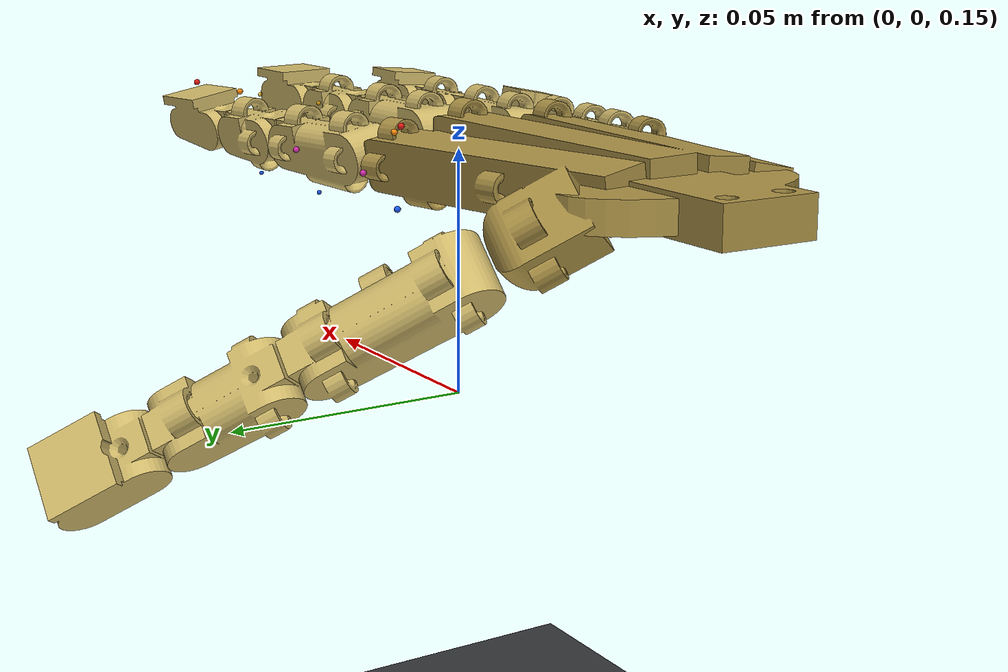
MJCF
<?xml version='1.0' encoding='utf-8'?>
<mujoco model="100_fingers_index_cable_debug">
  <compiler angle="radian" autolimits="true" meshdir="assets/100_fingers_human" />
  <size nuser_site="1" />
  <option timestep="0.0005" gravity="0 0 0" integrator="implicitfast" />
  <extension>
    <plugin plugin="mujoco.cable.unilateral">
      <instance name="index_extensor_cable">
        <config key="route_mode" value="surface" />
        <config key="route_tendon" value="index_extensor_seed" />
        <config key="wrap_geoms" value="index_mcp_wrap index_pip_wrap index_dip_wrap" />
        <config key="home_length" value="auto_initial" />
        <config key="stiffness" value="500.0" />
        <config key="damping" value="1.2" />
        <config key="slack" value="5e-05" />
        <config key="pretension_offset" value="0.0001" />
        <config key="max_tension" value="5.0" />
        <config key="ctrl_mode" value="target_contraction" />
        <config key="control_timeconstant" value="0.04" />
        <config key="max_contraction_rate" value="0.04" />
        <config key="taut_transition" value="8e-05" />
        <config key="taut_hysteresis" value="2e-05" />
        <config key="route_hysteresis" value="1e-05" />
        <config key="visual_width" value="1.6" />
        <config key="visual_smoothing_timeconstant" value="0.02" />
      </instance>
      <instance name="index_abductor_cable">
        <config key="route_mode" value="surface" />
        <config key="route_tendon" value="index_abductor_seed" />
        <config key="wrap_geoms" value="index_mcp_lateral_wrap" />
        <config key="home_length" value="auto_initial" />
        <config key="stiffness" value="350.0" />
        <config key="damping" value="1.2" />
        <config key="slack" value="5e-05" />
        <config key="pretension_offset" value="0.0001" />
        <config key="max_tension" value="5.0" />
        <config key="ctrl_mode" value="target_contraction" />
        <config key="control_timeconstant" value="0.04" />
        <config key="max_contraction_rate" value="0.04" />
        <config key="taut_transition" value="8e-05" />
        <config key="taut_hysteresis" value="2e-05" />
        <config key="route_hysteresis" value="1e-05" />
        <config key="visual_width" value="1.6" />
        <config key="visual_smoothing_timeconstant" value="0.02" />
      </instance>
      <instance name="index_adductor_cable">
        <config key="route_mode" value="surface" />
        <config key="route_tendon" value="index_adductor_seed" />
        <config key="wrap_geoms" value="index_mcp_lateral_wrap" />
        <config key="home_length" value="auto_initial" />
        <config key="stiffness" value="350.0" />
        <config key="damping" value="1.2" />
        <config key="slack" value="5e-05" />
        <config key="pretension_offset" value="0.0001" />
        <config key="max_tension" value="5.0" />
        <config key="ctrl_mode" value="target_contraction" />
        <config key="control_timeconstant" value="0.04" />
        <config key="max_contraction_rate" value="0.04" />
        <config key="taut_transition" value="8e-05" />
        <config key="taut_hysteresis" value="2e-05" />
        <config key="route_hysteresis" value="1e-05" />
        <config key="visual_width" value="1.6" />
        <config key="visual_smoothing_timeconstant" value="0.02" />
      </instance>
      <instance name="index_flexor_intermediate_cable">
        <config key="route_mode" value="surface" />
        <config key="route_tendon" value="index_flexor_intermediate_seed" />
        <config key="wrap_geoms" value="index_mcp_wrap index_pip_wrap" />
        <config key="home_length" value="auto_initial" />
        <config key="stiffness" value="700.0" />
        <config key="damping" value="1.2" />
        <config key="slack" value="5e-05" />
        <config key="pretension_offset" value="0.0001" />
        <config key="max_tension" value="5.0" />
        <config key="ctrl_mode" value="target_contraction" />
        <config key="control_timeconstant" value="0.04" />
        <config key="max_contraction_rate" value="0.04" />
        <config key="taut_transition" value="8e-05" />
        <config key="taut_hysteresis" value="2e-05" />
        <config key="route_hysteresis" value="1e-05" />
        <config key="visual_width" value="1.6" />
        <config key="visual_smoothing_timeconstant" value="0.02" />
      </instance>
      <instance name="index_flexor_distal_cable">
        <config key="route_mode" value="surface" />
        <config key="route_tendon" value="index_flexor_distal_seed" />
        <config key="wrap_geoms" value="index_mcp_wrap index_pip_wrap index_dip_wrap" />
        <config key="home_length" value="auto_initial" />
        <config key="stiffness" value="700.0" />
        <config key="damping" value="1.2" />
        <config key="slack" value="5e-05" />
        <config key="pretension_offset" value="0.0001" />
        <config key="max_tension" value="5.0" />
        <config key="ctrl_mode" value="target_contraction" />
        <config key="control_timeconstant" value="0.04" />
        <config key="max_contraction_rate" value="0.04" />
        <config key="taut_transition" value="8e-05" />
        <config key="taut_hysteresis" value="2e-05" />
        <config key="route_hysteresis" value="1e-05" />
        <config key="visual_width" value="1.6" />
        <config key="visual_smoothing_timeconstant" value="0.02" />
      </instance>
    </plugin>
  </extension>
  <asset>
    <texture name="grid" type="2d" builtin="checker" rgb1="0.17 0.18 0.19" rgb2="0.24 0.25 0.26" width="512" height="512" />
    <material name="floor_material" texture="grid" texrepeat="8 8" reflectance="0.08" />
    <material name="bone_material" rgba="0.82 0.73 0.42 1" specular="0.25" shininess="0.3" />
    <material name="palm_material" rgba="0.68 0.58 0.28 1" specular="0.20" shininess="0.25" />
    <mesh name="human_palm_mesh" file="human_palm.stl" scale="0.001 0.001 0.001" />
    <mesh name="index_proximal_mesh" file="human_index_proximal.stl" scale="0.001 0.001 0.001" />
    <mesh name="index_intermediate_mesh" file="human_index_intermediate.stl" scale="0.001 0.001 0.001" />
    <mesh name="index_distal_mesh" file="human_index_distal.stl" scale="0.001 0.001 0.001" />
    <mesh name="middle_proximal_mesh" file="human_middle_proximal.stl" scale="0.001 0.001 0.001" />
    <mesh name="middle_intermediate_mesh" file="human_middle_intermediate.stl" scale="0.001 0.001 0.001" />
    <mesh name="middle_distal_mesh" file="human_middle_distal.stl" scale="0.001 0.001 0.001" />
    <mesh name="ring_proximal_mesh" file="human_ring_proximal.stl" scale="0.001 0.001 0.001" />
    <mesh name="ring_intermediate_mesh" file="human_ring_intermediate.stl" scale="0.001 0.001 0.001" />
    <mesh name="ring_distal_mesh" file="human_ring_distal.stl" scale="0.001 0.001 0.001" />
    <mesh name="little_proximal_mesh" file="human_little_proximal.stl" scale="0.001 0.001 0.001" />
    <mesh name="little_intermediate_mesh" file="human_little_intermediate.stl" scale="0.001 0.001 0.001" />
    <mesh name="little_distal_mesh" file="human_little_distal.stl" scale="0.001 0.001 0.001" />
    <mesh name="thumb_proximal_mesh" file="human_thumb_proximal.stl" scale="0.001 0.001 0.001" />
    <mesh name="thumb_intermediate_mesh" file="human_thumb_intermediate.stl" scale="0.001 0.001 0.001" />
    <mesh name="thumb_distal_mesh" file="human_thumb_distal.stl" scale="0.001 0.001 0.001" />
  </asset>
  <visual>
    <headlight diffuse="0.75 0.75 0.75" ambient="0.25 0.25 0.25" />
    <global azimuth="-90" elevation="-52" />
  </visual>
  <default>
    <geom friction="0.9 0.01 0.001" solref="0.008 1" solimp="0.92 0.99 0.002" />
    <joint armature="0.00002" frictionloss="0.001" solreflimit="0.003 1" solimplimit="0.95 0.999 0.001" />
  </default>
  <worldbody>
    <light name="key" pos="0 -0.25 0.55" dir="0 0.25 -1" />
    <geom name="floor" type="plane" pos="0 0 0" size="0.40 0.40 0.01" material="floor_material" />
    <camera name="overview" pos="0.02 -0.34 0.34" xyaxes="1 0 0 0 0.447213595 0.894427191" />
    <camera name="dorsal" pos="0.02 0 0.48" xyaxes="1 0 0 0 1 0" />
    <body name="hand_frame" pos="-0.055 0 0.205" euler="1.57079632679 0 0">
      <geom name="human_palm_visual" type="mesh" mesh="human_palm_mesh" material="palm_material" density="0" contype="0" conaffinity="0" />
      <body name="index_mount" pos="0.0691641006 -0.00797923207 -0.0137002456" quat="0.998700812 0.000570927685 0.049643146 0.0114856932">
        <site name="index_extensor_start" pos="-0.012 -0.0079925 0" user="1" size="0.00065" rgba="0.10 0.35 0.95 1" />
        <site name="index_abductor_start" pos="-0.012 0 0.0079925" user="1" size="0.00065" rgba="0.00 0.68 0.72 1" />
        <site name="index_adductor_start" pos="-0.012 0 -0.0079925" user="1" size="0.00065" rgba="0.82 0.18 0.66 1" />
        <site name="index_flexor_intermediate_start" pos="-0.012 0.0072975 -0.0008" user="1" size="0.00065" rgba="1.00 0.55 0.05 1" />
        <site name="index_flexor_distal_start" pos="-0.012 0.00834 0.0008" user="1" size="0.00065" rgba="0.92 0.10 0.08 1" />
        <body name="index_proximal" pos="0 0 0">
          <inertial pos="0.0165290416 0.000941112353 0.00240157078" mass="0.01" diaginertia="1.2e-06 1.2e-06 1.2e-06" />
          <joint name="index_mcp_abduction" type="hinge" axis="0 1 0" range="-0.45 0.45" damping="0.02" />
          <joint name="index_mcp_flexion" type="hinge" axis="0 0 1" range="-0.15 1.30" damping="0.02" />
          <geom name="index_proximal_visual" type="mesh" mesh="index_proximal_mesh" material="bone_material" density="0" contype="0" conaffinity="0" />
          <geom name="index_mcp_wrap" type="cylinder" size="0.00695 0.0075" density="0" contype="0" conaffinity="0" rgba="0 0 0 0" />
          <geom name="index_mcp_lateral_wrap" type="cylinder" size="0.00695 0.0075" quat="0.707106781 -0.707106781 0 0" density="0" contype="0" conaffinity="0" rgba="0 0 0 0" />
          <site name="index_mcp_flexor_intermediate_hint" pos="0 0.0072975 -0.0008" user="2" size="0.00015" rgba="0 0 0 0" />
          <site name="index_mcp_flexor_distal_hint" pos="0 0.00834 0.0008" user="2" size="0.00015" rgba="0 0 0 0" />
          <site name="index_mcp_extensor_hint" pos="0 -0.0079925 0" user="2" size="0.00015" rgba="0 0 0 0" />
          <site name="index_mcp_abductor_hint" pos="0 0 0.0079925" user="2" size="0.00015" rgba="0 0 0 0" />
          <site name="index_mcp_adductor_hint" pos="0 0 -0.0079925" user="2" size="0.00015" rgba="0 0 0 0" />
          <site name="index_abductor_end" pos="0.0177795557 0 0.004865" user="1" size="0.00065" rgba="0.00 0.68 0.72 1" />
          <site name="index_adductor_end" pos="0.0177795557 0 -0.004865" user="1" size="0.00065" rgba="0.82 0.18 0.66 1" />
          <site name="index_proximal_flexor_guide" pos="0.0168097618 0.0094809532 0" user="3" size="0.00045" rgba="1 0.72 0.08 0.75" />
          <site name="index_proximal_extensor_guide" pos="0.0168097618 -0.00928579543 0" user="3" size="0.00045" rgba="0.10 0.35 0.95 1" />
          <body name="index_intermediate" pos="0.0323407908 1.78342423e-05 0.00119848233">
            <inertial pos="0.00877692332 -0.000401131915 -0.000145114203" mass="0.006" diaginertia="7e-07 7e-07 7e-07" />
            <joint name="index_pip_flexion" type="hinge" axis="0 0 1" range="0 1.75" damping="0.018" />
            <geom name="index_intermediate_visual" type="mesh" mesh="index_intermediate_mesh" material="bone_material" density="0" contype="0" conaffinity="0" />
            <geom name="index_pip_wrap" type="cylinder" size="0.00445 0.006" density="0" contype="0" conaffinity="0" rgba="0 0 0 0" />
            <site name="index_pip_flexor_intermediate_hint" pos="0 0.0046725 -0.0008" user="2" size="0.00015" rgba="0 0 0 0" />
            <site name="index_pip_flexor_distal_hint" pos="0 0.00534 0.0008" user="2" size="0.00015" rgba="0 0 0 0" />
            <site name="index_pip_extensor_hint" pos="0 -0.0051175 0" user="2" size="0.00015" rgba="0 0 0 0" />
            <site name="index_intermediate_flexor_guide" pos="0.0103734241 0.00816390052 0" user="3" size="0.00045" rgba="1 0.72 0.08 0.75" />
            <site name="index_intermediate_extensor_guide" pos="0.0103734241 -0.00925003271 0" user="3" size="0.00045" rgba="0.10 0.35 0.95 1" />
            <site name="index_flexor_intermediate_end" pos="0.0179488925 0.00798696037 -0.0008" user="1" size="0.00065" rgba="1.00 0.55 0.05 1" />
            <body name="index_distal" pos="0.0199612157 -1.78342423e-05 -0.00119848233">
              <inertial pos="0.00779740518 0.000138634689 -0.000264567579" mass="0.004" diaginertia="5e-07 5e-07 5e-07" />
              <joint name="index_dip_flexion" type="hinge" axis="0 0 1" range="0 1.45" damping="0.018" />
              <geom name="index_distal_visual" type="mesh" mesh="index_distal_mesh" material="bone_material" density="0" contype="0" conaffinity="0" />
              <geom name="index_dip_wrap" type="cylinder" size="0.003825 0.00525" density="0" contype="0" conaffinity="0" rgba="0 0 0 0" />
              <site name="index_dip_flexor_distal_hint" pos="0 0.00459 0.0008" user="2" size="0.00015" rgba="0 0 0 0" />
              <site name="index_dip_extensor_hint" pos="0 -0.00439875 0" user="2" size="0.00015" rgba="0 0 0 0" />
              <site name="index_flexor_distal_end" pos="0.0187697291 0.00773395368 0.0008" user="1" size="0.00065" rgba="0.92 0.10 0.08 1" />
              <site name="index_extensor_end" pos="0.0187697291 -0.00527720884 0" user="1" size="0.00065" rgba="0.10 0.35 0.95 1" />
              <site name="index_tip" pos="0.0187697291 0 0" size="0.0012" rgba="0.95 0.75 0.12 1" />
            </body>
          </body>
        </body>
      </body>
      <body name="middle_mount" pos="0.0743175316 -0.00584696209 0.0045850364" quat="0.99967989 -0.000259258806 -0.0225335141 0.011501793">
        <body name="middle_proximal" pos="0 0 0">
          <inertial pos="0.0174886819 0.00112390797 0.00272663141" mass="0.01" diaginertia="1.2e-06 1.2e-06 1.2e-06" />
          <joint name="middle_mcp_abduction" type="hinge" axis="0 1 0" range="-0.45 0.45" damping="0.02" />
          <joint name="middle_mcp_flexion" type="hinge" axis="0 0 1" range="-0.15 1.30" damping="0.02" />
          <geom name="middle_proximal_visual" type="mesh" mesh="middle_proximal_mesh" material="bone_material" density="0" contype="0" conaffinity="0" />
          <body name="middle_intermediate" pos="0.034107321 -3.15985695e-05 0.00153409842">
            <inertial pos="0.00943089969 -5.92547337e-06 -0.000619799024" mass="0.006" diaginertia="7e-07 7e-07 7e-07" />
            <joint name="middle_pip_flexion" type="hinge" axis="0 0 1" range="0 1.75" damping="0.018" />
            <geom name="middle_intermediate_visual" type="mesh" mesh="middle_intermediate_mesh" material="bone_material" density="0" contype="0" conaffinity="0" />
            <body name="middle_distal" pos="0.0213307528 3.15985695e-05 -0.00153409842">
              <inertial pos="0.00787731135 0.000742184633 -0.000528686378" mass="0.004" diaginertia="5e-07 5e-07 5e-07" />
              <joint name="middle_dip_flexion" type="hinge" axis="0 0 1" range="0 1.45" damping="0.018" />
              <geom name="middle_distal_visual" type="mesh" mesh="middle_distal_mesh" material="bone_material" density="0" contype="0" conaffinity="0" />
              <site name="middle_tip" pos="0.020613162 0 0" size="0.0012" rgba="0.95 0.75 0.12 1" />
            </body>
          </body>
        </body>
      </body>
      <body name="ring_mount" pos="0.0712914505 -0.00669905484 0.0311684575" quat="0.999892993 -0.000102429229 -0.00871981461 0.011745464">
        <body name="ring_proximal" pos="0 0 0">
          <inertial pos="0.0161460168 0.000966987612 -0.00225843536" mass="0.01" diaginertia="1.2e-06 1.2e-06 1.2e-06" />
          <joint name="ring_mcp_abduction" type="hinge" axis="0 1 0" range="-0.45 0.45" damping="0.02" />
          <joint name="ring_mcp_flexion" type="hinge" axis="0 0 1" range="-0.15 1.30" damping="0.02" />
          <geom name="ring_proximal_visual" type="mesh" mesh="ring_proximal_mesh" material="bone_material" density="0" contype="0" conaffinity="0" />
          <body name="ring_intermediate" pos="0.0317267548 -4.7823839e-05 -0.00121365981">
            <inertial pos="0.00904079374 -6.66719937e-05 0.000387222347" mass="0.006" diaginertia="7e-07 7e-07 7e-07" />
            <joint name="ring_pip_flexion" type="hinge" axis="0 0 1" range="0 1.75" damping="0.018" />
            <geom name="ring_intermediate_visual" type="mesh" mesh="ring_intermediate_mesh" material="bone_material" density="0" contype="0" conaffinity="0" />
            <body name="ring_distal" pos="0.0205560087 4.7823839e-05 0.00121365981">
              <inertial pos="0.00792798071 0.000563846871 0.000371284873" mass="0.004" diaginertia="5e-07 5e-07 5e-07" />
              <joint name="ring_dip_flexion" type="hinge" axis="0 0 1" range="0 1.45" damping="0.018" />
              <geom name="ring_distal_visual" type="mesh" mesh="ring_distal_mesh" material="bone_material" density="0" contype="0" conaffinity="0" />
              <site name="ring_tip" pos="0.0200536733 0 0" size="0.0012" rgba="0.95 0.75 0.12 1" />
            </body>
          </body>
        </body>
      </body>
      <body name="little_mount" pos="0.0594162178 -0.0090879457 0.0413373909" quat="0.991384289 -0.000456937502 -0.13093897 0.00345963208">
        <body name="little_proximal" pos="0 0 0">
          <inertial pos="0.0146596637 0.000580461882 0.0018994543" mass="0.01" diaginertia="1.2e-06 1.2e-06 1.2e-06" />
          <joint name="little_mcp_abduction" type="hinge" axis="0 1 0" range="-0.45 0.45" damping="0.02" />
          <joint name="little_mcp_flexion" type="hinge" axis="0 0 1" range="-0.15 1.30" damping="0.02" />
          <geom name="little_proximal_visual" type="mesh" mesh="little_proximal_mesh" material="bone_material" density="0" contype="0" conaffinity="0" />
          <body name="little_intermediate" pos="0.0285753028 -0.000194759338 0.00123445991">
            <inertial pos="0.00801605874 -0.000227590866 -0.000928502185" mass="0.006" diaginertia="7e-07 7e-07 7e-07" />
            <joint name="little_pip_flexion" type="hinge" axis="0 0 1" range="0 1.75" damping="0.018" />
            <geom name="little_intermediate_visual" type="mesh" mesh="little_intermediate_mesh" material="bone_material" density="0" contype="0" conaffinity="0" />
            <body name="little_distal" pos="0.018541709 0.000194759338 -0.00123445991">
              <inertial pos="0.00638638377 0.000439387552 -0.000589624222" mass="0.004" diaginertia="5e-07 5e-07 5e-07" />
              <joint name="little_dip_flexion" type="hinge" axis="0 0 1" range="0 1.45" damping="0.018" />
              <geom name="little_distal_visual" type="mesh" mesh="little_distal_mesh" material="bone_material" density="0" contype="0" conaffinity="0" />
              <site name="little_tip" pos="0.0160171928 0 0" size="0.0012" rgba="0.95 0.75 0.12 1" />
            </body>
          </body>
        </body>
      </body>
      <body name="thumb_mount" pos="0.00730069697 -0.0191560717 -0.0203346233" quat="0.863417788 -0.105460324 0.449921134 -0.202382846">
        <body name="thumb_proximal" pos="0 0 0">
          <inertial pos="0.0201983694 0.00275823402 0.00142041813" mass="0.01" diaginertia="1.2e-06 1.2e-06 1.2e-06" />
          <joint name="thumb_mcp_abduction" type="hinge" axis="0 1 0" range="-0.45 0.45" damping="0.02" />
          <joint name="thumb_mcp_flexion" type="hinge" axis="0 0 1" range="-0.15 1.30" damping="0.02" />
          <geom name="thumb_proximal_visual" type="mesh" mesh="thumb_proximal_mesh" material="bone_material" density="0" contype="0" conaffinity="0" />
          <body name="thumb_intermediate" pos="0.0386129609 0.00146640829 0.000183108589">
            <inertial pos="0.0132394981 -0.00146243131 0.00105054212" mass="0.006" diaginertia="7e-07 7e-07 7e-07" />
            <joint name="thumb_pip_flexion" type="hinge" axis="0 0 1" range="0 1.75" damping="0.018" />
            <geom name="thumb_intermediate_visual" type="mesh" mesh="thumb_intermediate_mesh" material="bone_material" density="0" contype="0" conaffinity="0" />
            <body name="thumb_distal" pos="0.0277043294 -0.00146640829 -0.000183108589">
              <inertial pos="0.00962865987 -0.000791135378 0.000409138211" mass="0.004" diaginertia="5e-07 5e-07 5e-07" />
              <joint name="thumb_dip_flexion" type="hinge" axis="0 0 1" range="0 1.45" damping="0.018" />
              <geom name="thumb_distal_visual" type="mesh" mesh="thumb_distal_mesh" material="bone_material" density="0" contype="0" conaffinity="0" />
              <site name="thumb_tip" pos="0.0223360225 0 0" size="0.0012" rgba="0.95 0.75 0.12 1" />
            </body>
          </body>
        </body>
      </body>
    </body>
    <camera name="index_route_debug" pos="0.050 -0.220 0.197" xyaxes="1 0 0 0 0 1" />
  </worldbody>
  <tendon>
    <spatial name="index_extensor_seed" width="0.000000001" rgba="0.10 0.35 0.95 1" limited="false">
      <site site="index_extensor_start" />
      <site site="index_mcp_extensor_hint" />
      <site site="index_proximal_extensor_guide" />
      <site site="index_pip_extensor_hint" />
      <site site="index_intermediate_extensor_guide" />
      <site site="index_dip_extensor_hint" />
      <site site="index_extensor_end" />
    </spatial>
    <spatial name="index_abductor_seed" width="0.000000001" rgba="0.00 0.68 0.72 1" limited="false">
      <site site="index_abductor_start" />
      <site site="index_mcp_abductor_hint" />
      <site site="index_abductor_end" />
    </spatial>
    <spatial name="index_adductor_seed" width="0.000000001" rgba="0.82 0.18 0.66 1" limited="false">
      <site site="index_adductor_start" />
      <site site="index_mcp_adductor_hint" />
      <site site="index_adductor_end" />
    </spatial>
    <spatial name="index_flexor_intermediate_seed" width="0.000000001" rgba="1.00 0.55 0.05 1" limited="false">
      <site site="index_flexor_intermediate_start" />
      <site site="index_mcp_flexor_intermediate_hint" />
      <site site="index_proximal_flexor_guide" />
      <site site="index_pip_flexor_intermediate_hint" />
      <site site="index_flexor_intermediate_end" />
    </spatial>
    <spatial name="index_flexor_distal_seed" width="0.000000001" rgba="0.92 0.10 0.08 1" limited="false">
      <site site="index_flexor_distal_start" />
      <site site="index_mcp_flexor_distal_hint" />
      <site site="index_proximal_flexor_guide" />
      <site site="index_pip_flexor_distal_hint" />
      <site site="index_intermediate_flexor_guide" />
      <site site="index_dip_flexor_distal_hint" />
      <site site="index_flexor_distal_end" />
    </spatial>
  </tendon>
  <actuator>
    <plugin name="index_extensor_command" tendon="index_extensor_seed" gear="0" instance="index_extensor_cable" ctrllimited="true" ctrlrange="0 0.018" />
    <plugin name="index_abductor_command" tendon="index_abductor_seed" gear="0" instance="index_abductor_cable" ctrllimited="true" ctrlrange="0 0.018" />
    <plugin name="index_adductor_command" tendon="index_adductor_seed" gear="0" instance="index_adductor_cable" ctrllimited="true" ctrlrange="0 0.018" />
    <plugin name="index_flexor_intermediate_command" tendon="index_flexor_intermediate_seed" gear="0" instance="index_flexor_intermediate_cable" ctrllimited="true" ctrlrange="0 0.018" />
    <plugin name="index_flexor_distal_command" tendon="index_flexor_distal_seed" gear="0" instance="index_flexor_distal_cable" ctrllimited="true" ctrlrange="0 0.018" />
  </actuator>
  <sensor>
    <plugin name="index_extensor_state" instance="index_extensor_cable" />
    <plugin name="index_abductor_state" instance="index_abductor_cable" />
    <plugin name="index_adductor_state" instance="index_adductor_cable" />
    <plugin name="index_flexor_intermediate_state" instance="index_flexor_intermediate_cable" />
    <plugin name="index_flexor_distal_state" instance="index_flexor_distal_cable" />
    <framepos name="index_tip_position" objtype="site" objname="index_tip" />
    <framepos name="middle_tip_position" objtype="site" objname="middle_tip" />
    <framepos name="ring_tip_position" objtype="site" objname="ring_tip" />
    <framepos name="little_tip_position" objtype="site" objname="little_tip" />
    <framepos name="thumb_tip_position" objtype="site" objname="thumb_tip" />
  </sensor>
</mujoco>
